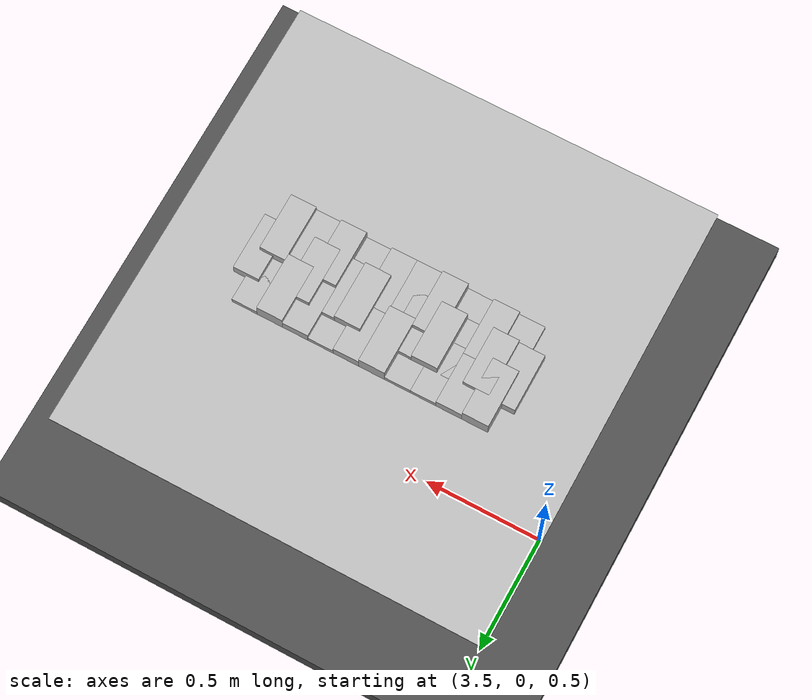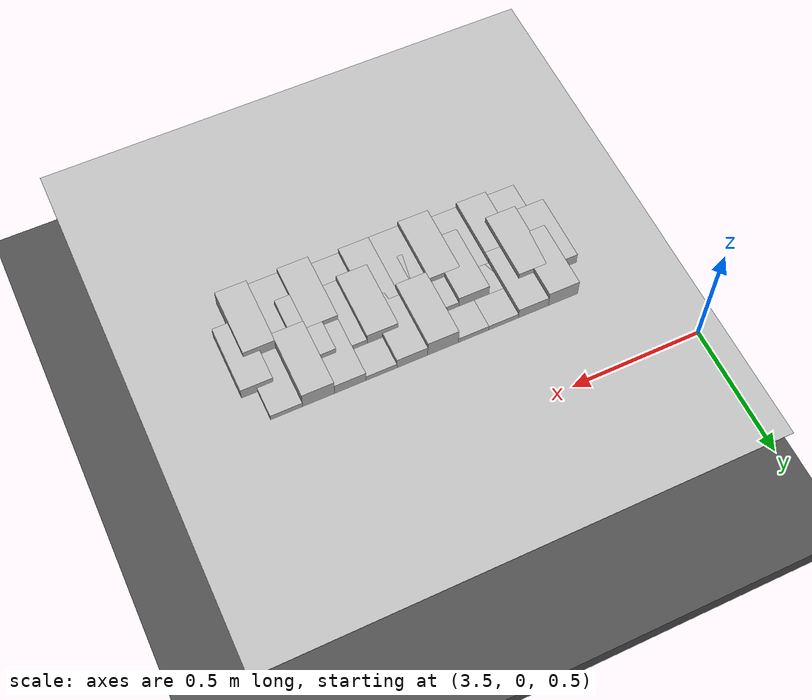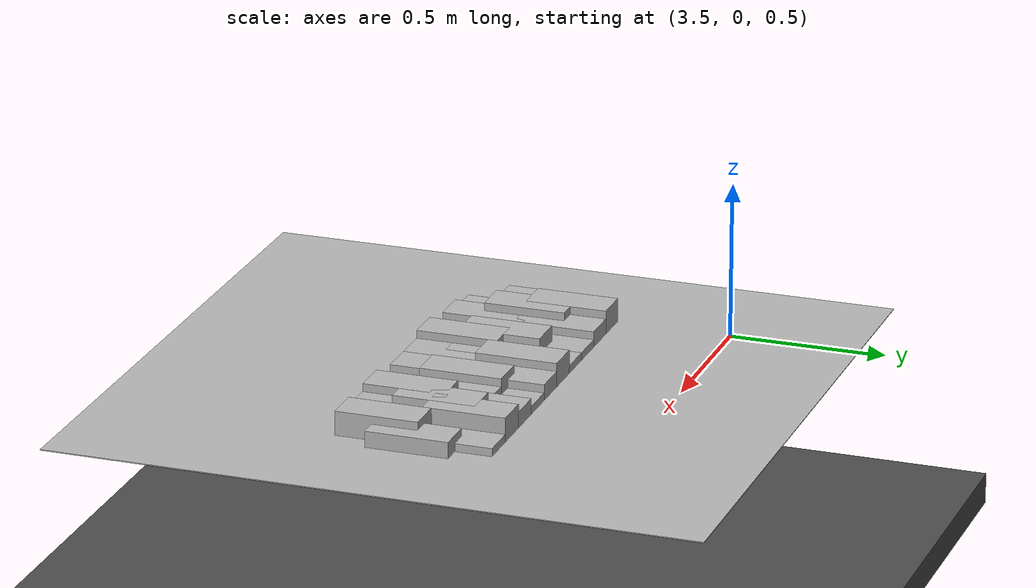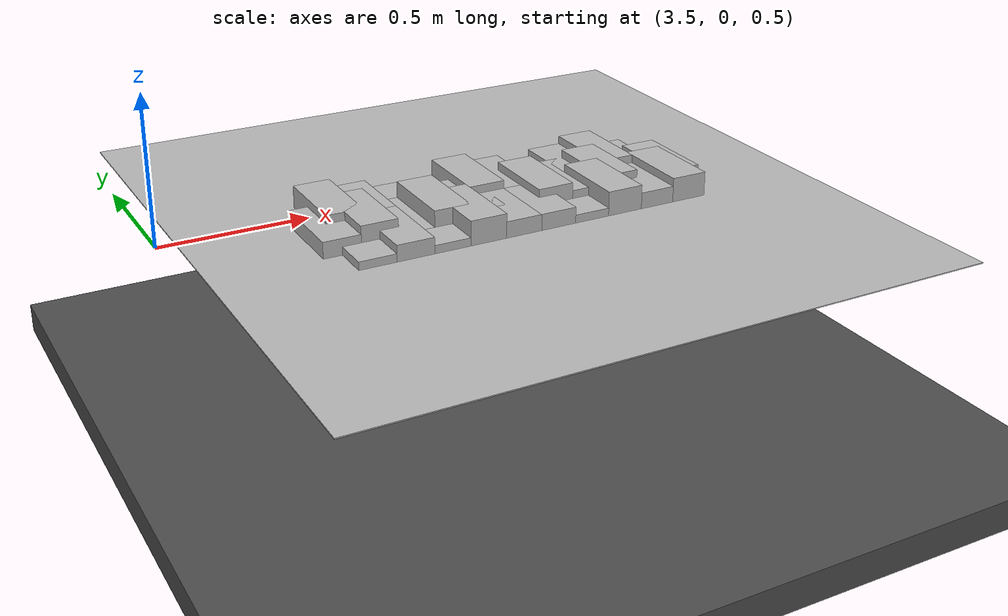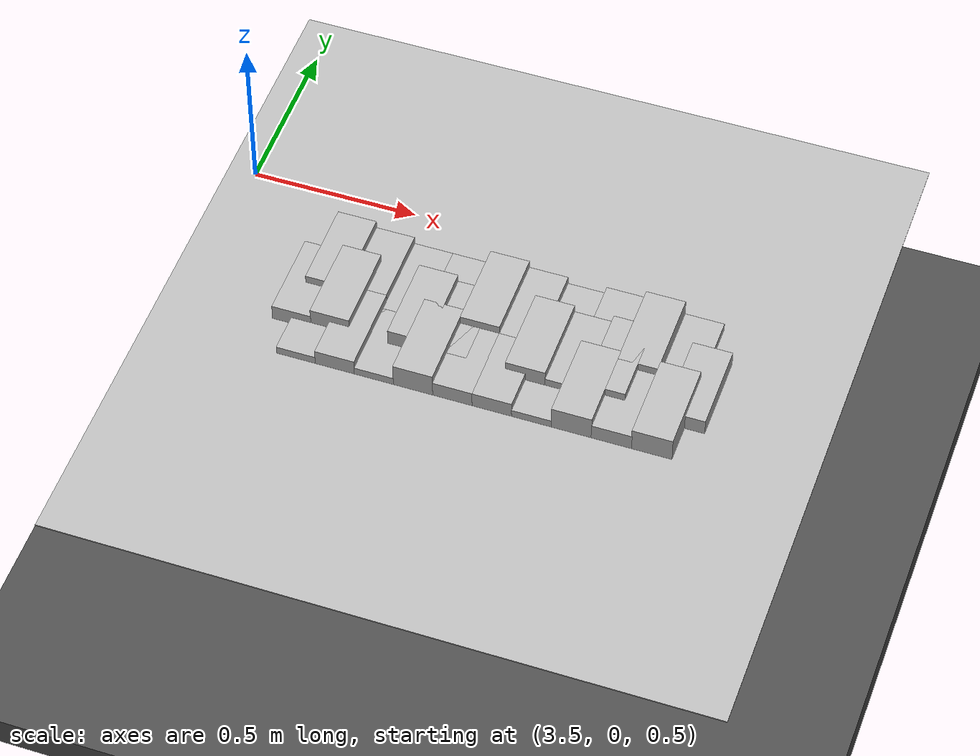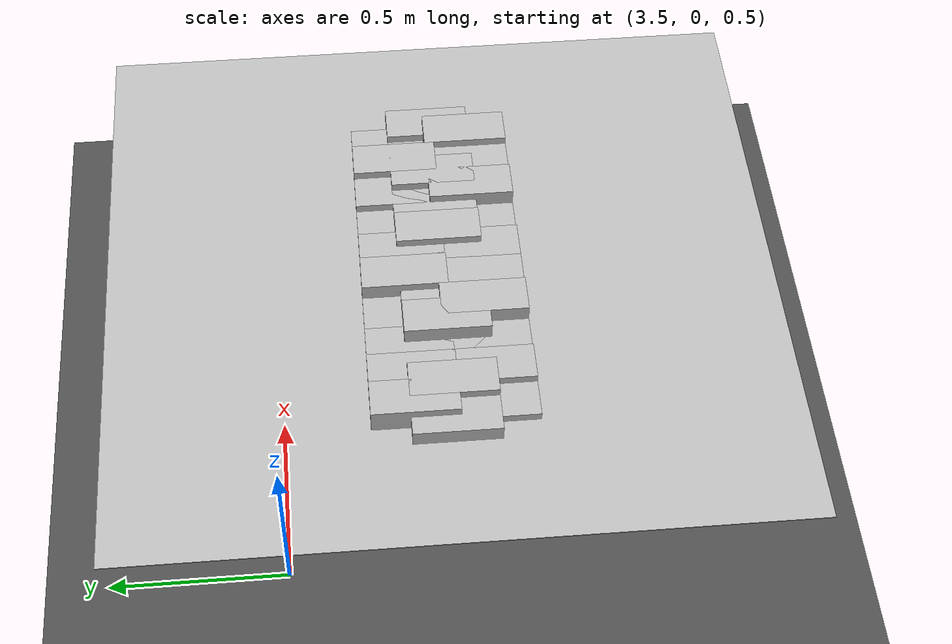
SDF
<sdf version="1.6">
 <world name="default">
  <model name="ground_plane">
   <static>1</static>
   <link name="link">
    <collision name="collision">
     <geometry><plane><normal>0 0 1</normal><size>100 100</size></plane></geometry>
     <surface><friction><ode><mu>100</mu><mu2>50</mu2></ode></friction></surface>
    </collision>
    <visual name="visual">
     <cast_shadows>0</cast_shadows>
     <geometry><plane><normal>0 0 1</normal><size>100 100</size></plane></geometry>
     <material>
      <script><uri>file://media/materials/scripts/gazebo.material</uri><name>Gazebo/Grey</name></script>
     </material>
    </visual>
   </link>
  </model>
  <model name="frc2016_roughterrain_0">
   <link name="link_clone_21">
    <pose>4.53605 -0.520112 -0.073164 0 -0 0</pose>
    <inertial>
     <inertia><ixx>nan</ixx><ixy>0</ixy><ixz>0</ixz><iyy>nan</iyy><iyz>0</iyz><izz>nan</izz></inertia>
     <mass>0</mass>
    </inertial>
    <visual name="row1_block5_md">
     <pose>0.05715 0.1143 0.10968 0 -0 0</pose>
     <geometry><box><size>0.115452 0.257474 0.0508</size></box></geometry>
     <material><shader type="pixel"/></material>
    </visual>
    <visual name="row1_block4_sm">
     <pose>0.17145 0.1143 0.09698 0 -0 0</pose>
     <geometry><box><size>0.115452 0.257474 0.0254</size></box></geometry>
     <material><shader type="pixel"/></material>
    </visual>
    <visual name="platform">
     <pose>0 0 0.08269 0 -0 0</pose>
     <geometry><box><size>1.91826 2.01688 0.003175</size></box></geometry>
     <material><shader type="pixel"/></material>
    </visual>
    <visual name="row1_block1_sm">
     <pose>0.51435 0.1143 0.09698 0 -0 0</pose>
     <geometry><box><size>0.115452 0.257474 0.0254</size></box></geometry>
     <material><shader type="pixel"/></material>
    </visual>
    <visual name="row1_block2_lg">
     <pose>0.40005 0.1143 0.12238 0 -0 0</pose>
     <geometry><box><size>0.115452 0.257474 0.0762</size></box></geometry>
     <material><shader type="pixel"/></material>
    </visual>
    <visual name="row1_block3_md">
     <pose>0.28575 0.1143 0.10968 0 -0 0</pose>
     <geometry><box><size>0.115452 0.257474 0.0508</size></box></geometry>
     <material><shader type="pixel"/></material>
    </visual>
    <visual name="row1_block6_lg">
     <pose>-0.05715 0.1143 0.12238 0 -0 0</pose>
     <geometry><box><size>0.115452 0.257474 0.0762</size></box></geometry>
     <material><shader type="pixel"/></material>
    </visual>
    <visual name="row1_block7_sm">
     <pose>-0.17145 0.1143 0.09698 0 -0 0</pose>
     <geometry><box><size>0.115452 0.257474 0.0254</size></box></geometry>
     <material><shader type="pixel"/></material>
    </visual>
    <visual name="row1_block8_sm">
     <pose>-0.28575 0.1143 0.09698 0 -0 0</pose>
     <geometry><box><size>0.115452 0.257474 0.0254</size></box></geometry>
     <material><shader type="pixel"/></material>
    </visual>
    <visual name="row1_block10_lg">
     <pose>-0.51435 0.1143 0.12238 0 -0 0</pose>
     <geometry><box><size>0.115452 0.257474 0.0762</size></box></geometry>
     <material><shader type="pixel"/></material>
    </visual>
    <visual name="row1_block9_md">
     <pose>-0.40005 0.1143 0.10968 0 -0 0</pose>
     <geometry><box><size>0.115452 0.257474 0.0508</size></box></geometry>
     <material><shader type="pixel"/></material>
    </visual>
    <visual name="row2_block1_md">
     <pose>0.5715 0 0.10968 0 -0 0</pose>
     <geometry><box><size>0.115452 0.257474 0.0508</size></box></geometry>
     <material><shader type="pixel"/></material>
    </visual>
    <visual name="row2_block2_sm">
     <pose>0.4572 0 0.09698 0 -0 0</pose>
     <geometry><box><size>0.115452 0.257474 0.0254</size></box></geometry>
     <material><shader type="pixel"/></material>
    </visual>
    <visual name="row2_block3_lg">
     <pose>0.3429 0 0.12238 0 -0 0</pose>
     <geometry><box><size>0.115452 0.257474 0.0762</size></box></geometry>
     <material><shader type="pixel"/></material>
    </visual>
    <visual name="row2_block4_md">
     <pose>0.2286 0 0.10968 0 -0 0</pose>
     <geometry><box><size>0.115452 0.257474 0.0508</size></box></geometry>
     <material><shader type="pixel"/></material>
    </visual>
    <visual name="row2_block5_lg">
     <pose>0.1143 0 0.12238 0 -0 0</pose>
     <geometry><box><size>0.115452 0.257474 0.0762</size></box></geometry>
     <material><shader type="pixel"/></material>
    </visual>
    <visual name="row2_block6_sm">
     <pose>0 0 0.09698 0 -0 0</pose>
     <geometry><box><size>0.115452 0.257474 0.0254</size></box></geometry>
     <material><shader type="pixel"/></material>
    </visual>
    <visual name="row2_block7_md">
     <pose>-0.1143 0 0.10968 0 -0 0</pose>
     <geometry><box><size>0.115452 0.257474 0.0508</size></box></geometry>
     <material><shader type="pixel"/></material>
    </visual>
    <visual name="row2_block8_lg">
     <pose>-0.2286 0 0.12238 0 -0 0</pose>
     <geometry><box><size>0.115452 0.257474 0.0762</size></box></geometry>
     <material><shader type="pixel"/></material>
    </visual>
    <visual name="row2_block9_sm">
     <pose>-0.3429 0 0.09698 0 -0 0</pose>
     <geometry><box><size>0.115452 0.257474 0.0254</size></box></geometry>
     <material><shader type="pixel"/></material>
    </visual>
    <visual name="row2_block10_lg">
     <pose>-0.4572 0 0.12238 0 -0 0</pose>
     <geometry><box><size>0.115452 0.257474 0.0762</size></box></geometry>
     <material><shader type="pixel"/></material>
    </visual>
    <visual name="row2_block11_md">
     <pose>-0.5715 0 0.10968 0 -0 0</pose>
     <geometry><box><size>0.115452 0.257474 0.0508</size></box></geometry>
     <material><shader type="pixel"/></material>
    </visual>
    <visual name="row3_block2_md">
     <pose>0.40005 -0.1143 0.10968 0 -0 0</pose>
     <geometry><box><size>0.115452 0.257474 0.0508</size></box></geometry>
     <material><shader type="pixel"/></material>
    </visual>
    <visual name="row3_block1_lg">
     <pose>0.51435 -0.1143 0.12238 0 -0 0</pose>
     <geometry><box><size>0.115452 0.257474 0.0762</size></box></geometry>
     <material><shader type="pixel"/></material>
    </visual>
    <visual name="row3_block3_lg">
     <pose>0.28575 -0.1143 0.12238 0 -0 0</pose>
     <geometry><box><size>0.115452 0.257474 0.0762</size></box></geometry>
     <material><shader type="pixel"/></material>
    </visual>
    <visual name="row3_block4_sm">
     <pose>0.17145 -0.1143 0.09698 0 -0 0</pose>
     <geometry><box><size>0.115452 0.257474 0.0254</size></box></geometry>
     <material><shader type="pixel"/></material>
    </visual>
    <visual name="row3_block5_md">
     <pose>0.05715 -0.1143 0.10968 0 -0 0</pose>
     <geometry><box><size>0.115452 0.257474 0.0508</size></box></geometry>
     <material><shader type="pixel"/></material>
    </visual>
    <visual name="row3_block6_md">
     <pose>-0.05715 -0.1143 0.10968 0 -0 0</pose>
     <geometry><box><size>0.115452 0.257474 0.0508</size></box></geometry>
     <material><shader type="pixel"/></material>
    </visual>
    <visual name="row3_block8_sm">
     <pose>-0.28575 -0.1143 0.09698 0 -0 0</pose>
     <geometry><box><size>0.115452 0.257474 0.0254</size></box></geometry>
     <material><shader type="pixel"/></material>
    </visual>
    <visual name="row3_block7_lg">
     <pose>-0.17145 -0.1143 0.12238 0 -0 0</pose>
     <geometry><box><size>0.115452 0.257474 0.0762</size></box></geometry>
     <material><shader type="pixel"/></material>
    </visual>
    <visual name="row3_block9_md">
     <pose>-0.40005 -0.1143 0.10968 0 -0 0</pose>
     <geometry><box><size>0.115452 0.257474 0.0508</size></box></geometry>
     <material><shader type="pixel"/></material>
    </visual>
    <visual name="row3_block10_sm">
     <pose>-0.51435 -0.1143 0.09698 0 -0 0</pose>
     <geometry><box><size>0.115452 0.257474 0.0254</size></box></geometry>
     <material><shader type="pixel"/></material>
    </visual>
    <collision name="platform_0">
     <pose>0 0 0.08269 0 -0 0</pose>
     <geometry><box><size>1.91826 2.01688 0.003175</size></box></geometry>
     <surface>
      <friction>
       <ode><mu>1</mu><mu2>1</mu2><fdir1>0 0 0</fdir1><slip1>0</slip1><slip2>0</slip2></ode>
       <torsional>
        <coefficient>1</coefficient>
        <patch_radius>0</patch_radius>
        <surface_radius>0</surface_radius>
        <use_patch_radius>1</use_patch_radius>
        <ode><slip>0</slip></ode>
       </torsional>
      </friction>
      <bounce><restitution_coefficient>0</restitution_coefficient><threshold>1e+06</threshold></bounce>
      <contact>
       <collide_without_contact>0</collide_without_contact>
       <collide_without_contact_bitmask>1</collide_without_contact_bitmask>
       <collide_bitmask>1</collide_bitmask>
       <ode>
        <soft_cfm>0</soft_cfm>
        <soft_erp>0.2</soft_erp>
        <kp>1e+13</kp>
        <kd>1</kd>
        <max_vel>0.01</max_vel>
        <min_depth>0</min_depth>
       </ode>
       <bullet>
        <split_impulse>1</split_impulse>
        <split_impulse_penetration_threshold>-0.01</split_impulse_penetration_threshold>
        <soft_cfm>0</soft_cfm>
        <soft_erp>0.2</soft_erp>
        <kp>1e+13</kp>
        <kd>1</kd>
       </bullet>
      </contact>
     </surface>
    </collision>
    <collision name="row2_block5_lg_0">
     <pose>0.1143 0 0.12238 0 -0 0</pose>
     <geometry><box><size>0.115452 0.257474 0.0762</size></box></geometry>
     <surface>
      <friction>
       <ode><mu>1</mu><mu2>1</mu2><fdir1>0 0 0</fdir1><slip1>0</slip1><slip2>0</slip2></ode>
       <torsional>
        <coefficient>1</coefficient>
        <patch_radius>0</patch_radius>
        <surface_radius>0</surface_radius>
        <use_patch_radius>1</use_patch_radius>
        <ode><slip>0</slip></ode>
       </torsional>
      </friction>
      <bounce><restitution_coefficient>0</restitution_coefficient><threshold>1e+06</threshold></bounce>
      <contact>
       <collide_without_contact>0</collide_without_contact>
       <collide_without_contact_bitmask>1</collide_without_contact_bitmask>
       <collide_bitmask>1</collide_bitmask>
       <ode>
        <soft_cfm>0</soft_cfm>
        <soft_erp>0.2</soft_erp>
        <kp>1e+13</kp>
        <kd>1</kd>
        <max_vel>0.01</max_vel>
        <min_depth>0</min_depth>
       </ode>
       <bullet>
        <split_impulse>1</split_impulse>
        <split_impulse_penetration_threshold>-0.01</split_impulse_penetration_threshold>
        <soft_cfm>0</soft_cfm>
        <soft_erp>0.2</soft_erp>
        <kp>1e+13</kp>
        <kd>1</kd>
       </bullet>
      </contact>
     </surface>
    </collision>
    <collision name="row1_block1_sm_0">
     <pose>0.51435 0.1143 0.09698 0 -0 0</pose>
     <geometry><box><size>0.115452 0.257474 0.0254</size></box></geometry>
     <surface>
      <friction>
       <ode><mu>1</mu><mu2>1</mu2><fdir1>0 0 0</fdir1><slip1>0</slip1><slip2>0</slip2></ode>
       <torsional>
        <coefficient>1</coefficient>
        <patch_radius>0</patch_radius>
        <surface_radius>0</surface_radius>
        <use_patch_radius>1</use_patch_radius>
        <ode><slip>0</slip></ode>
       </torsional>
      </friction>
      <bounce><restitution_coefficient>0</restitution_coefficient><threshold>1e+06</threshold></bounce>
      <contact>
       <collide_without_contact>0</collide_without_contact>
       <collide_without_contact_bitmask>1</collide_without_contact_bitmask>
       <collide_bitmask>1</collide_bitmask>
       <ode>
        <soft_cfm>0</soft_cfm>
        <soft_erp>0.2</soft_erp>
        <kp>1e+13</kp>
        <kd>1</kd>
        <max_vel>0.01</max_vel>
        <min_depth>0</min_depth>
       </ode>
       <bullet>
        <split_impulse>1</split_impulse>
        <split_impulse_penetration_threshold>-0.01</split_impulse_penetration_threshold>
        <soft_cfm>0</soft_cfm>
        <soft_erp>0.2</soft_erp>
        <kp>1e+13</kp>
        <kd>1</kd>
       </bullet>
      </contact>
     </surface>
    </collision>
    <collision name="row1_block3_md_0">
     <pose>0.28575 0.1143 0.10968 0 -0 0</pose>
     <geometry><box><size>0.115452 0.257474 0.0508</size></box></geometry>
     <surface>
      <friction>
       <ode><mu>1</mu><mu2>1</mu2><fdir1>0 0 0</fdir1><slip1>0</slip1><slip2>0</slip2></ode>
       <torsional>
        <coefficient>1</coefficient>
        <patch_radius>0</patch_radius>
        <surface_radius>0</surface_radius>
        <use_patch_radius>1</use_patch_radius>
        <ode><slip>0</slip></ode>
       </torsional>
      </friction>
      <bounce><restitution_coefficient>0</restitution_coefficient><threshold>1e+06</threshold></bounce>
      <contact>
       <collide_without_contact>0</collide_without_contact>
       <collide_without_contact_bitmask>1</collide_without_contact_bitmask>
       <collide_bitmask>1</collide_bitmask>
       <ode>
        <soft_cfm>0</soft_cfm>
        <soft_erp>0.2</soft_erp>
        <kp>1e+13</kp>
        <kd>1</kd>
        <max_vel>0.01</max_vel>
        <min_depth>0</min_depth>
       </ode>
       <bullet>
        <split_impulse>1</split_impulse>
        <split_impulse_penetration_threshold>-0.01</split_impulse_penetration_threshold>
        <soft_cfm>0</soft_cfm>
        <soft_erp>0.2</soft_erp>
        <kp>1e+13</kp>
        <kd>1</kd>
       </bullet>
      </contact>
     </surface>
    </collision>
    <collision name="row1_block2_lg_0">
     <pose>0.40005 0.1143 0.12238 0 -0 0</pose>
     <geometry><box><size>0.115452 0.257474 0.0762</size></box></geometry>
     <surface>
      <friction>
       <ode><mu>1</mu><mu2>1</mu2><fdir1>0 0 0</fdir1><slip1>0</slip1><slip2>0</slip2></ode>
       <torsional>
        <coefficient>1</coefficient>
        <patch_radius>0</patch_radius>
        <surface_radius>0</surface_radius>
        <use_patch_radius>1</use_patch_radius>
        <ode><slip>0</slip></ode>
       </torsional>
      </friction>
      <bounce><restitution_coefficient>0</restitution_coefficient><threshold>1e+06</threshold></bounce>
      <contact>
       <collide_without_contact>0</collide_without_contact>
       <collide_without_contact_bitmask>1</collide_without_contact_bitmask>
       <collide_bitmask>1</collide_bitmask>
       <ode>
        <soft_cfm>0</soft_cfm>
        <soft_erp>0.2</soft_erp>
        <kp>1e+13</kp>
        <kd>1</kd>
        <max_vel>0.01</max_vel>
        <min_depth>0</min_depth>
       </ode>
       <bullet>
        <split_impulse>1</split_impulse>
        <split_impulse_penetration_threshold>-0.01</split_impulse_penetration_threshold>
        <soft_cfm>0</soft_cfm>
        <soft_erp>0.2</soft_erp>
        <kp>1e+13</kp>
        <kd>1</kd>
       </bullet>
      </contact>
     </surface>
    </collision>
    <collision name="row1_block4_sm_0">
     <pose>0.17145 0.1143 0.09698 0 -0 0</pose>
     <geometry><box><size>0.115452 0.257474 0.0254</size></box></geometry>
     <surface>
      <friction>
       <ode><mu>1</mu><mu2>1</mu2><fdir1>0 0 0</fdir1><slip1>0</slip1><slip2>0</slip2></ode>
       <torsional>
        <coefficient>1</coefficient>
        <patch_radius>0</patch_radius>
        <surface_radius>0</surface_radius>
        <use_patch_radius>1</use_patch_radius>
        <ode><slip>0</slip></ode>
       </torsional>
      </friction>
      <bounce><restitution_coefficient>0</restitution_coefficient><threshold>1e+06</threshold></bounce>
      <contact>
       <collide_without_contact>0</collide_without_contact>
       <collide_without_contact_bitmask>1</collide_without_contact_bitmask>
       <collide_bitmask>1</collide_bitmask>
       <ode>
        <soft_cfm>0</soft_cfm>
        <soft_erp>0.2</soft_erp>
        <kp>1e+13</kp>
        <kd>1</kd>
        <max_vel>0.01</max_vel>
        <min_depth>0</min_depth>
       </ode>
       <bullet>
        <split_impulse>1</split_impulse>
        <split_impulse_penetration_threshold>-0.01</split_impulse_penetration_threshold>
        <soft_cfm>0</soft_cfm>
        <soft_erp>0.2</soft_erp>
        <kp>1e+13</kp>
        <kd>1</kd>
       </bullet>
      </contact>
     </surface>
    </collision>
    <collision name="row1_block5_md_0">
     <pose>0.05715 0.1143 0.10968 0 -0 0</pose>
     <geometry><box><size>0.115452 0.257474 0.0508</size></box></geometry>
     <surface>
      <friction>
       <ode><mu>1</mu><mu2>1</mu2><fdir1>0 0 0</fdir1><slip1>0</slip1><slip2>0</slip2></ode>
       <torsional>
        <coefficient>1</coefficient>
        <patch_radius>0</patch_radius>
        <surface_radius>0</surface_radius>
        <use_patch_radius>1</use_patch_radius>
        <ode><slip>0</slip></ode>
       </torsional>
      </friction>
      <bounce><restitution_coefficient>0</restitution_coefficient><threshold>1e+06</threshold></bounce>
      <contact>
       <collide_without_contact>0</collide_without_contact>
       <collide_without_contact_bitmask>1</collide_without_contact_bitmask>
       <collide_bitmask>1</collide_bitmask>
       <ode>
        <soft_cfm>0</soft_cfm>
        <soft_erp>0.2</soft_erp>
        <kp>1e+13</kp>
        <kd>1</kd>
        <max_vel>0.01</max_vel>
        <min_depth>0</min_depth>
       </ode>
       <bullet>
        <split_impulse>1</split_impulse>
        <split_impulse_penetration_threshold>-0.01</split_impulse_penetration_threshold>
        <soft_cfm>0</soft_cfm>
        <soft_erp>0.2</soft_erp>
        <kp>1e+13</kp>
        <kd>1</kd>
       </bullet>
      </contact>
     </surface>
    </collision>
    <collision name="row1_block6_lg_0">
     <pose>-0.05715 0.1143 0.12238 0 -0 0</pose>
     <geometry><box><size>0.115452 0.257474 0.0762</size></box></geometry>
     <surface>
      <friction>
       <ode><mu>1</mu><mu2>1</mu2><fdir1>0 0 0</fdir1><slip1>0</slip1><slip2>0</slip2></ode>
       <torsional>
        <coefficient>1</coefficient>
        <patch_radius>0</patch_radius>
        <surface_radius>0</surface_radius>
        <use_patch_radius>1</use_patch_radius>
        <ode><slip>0</slip></ode>
       </torsional>
      </friction>
      <bounce><restitution_coefficient>0</restitution_coefficient><threshold>1e+06</threshold></bounce>
      <contact>
       <collide_without_contact>0</collide_without_contact>
       <collide_without_contact_bitmask>1</collide_without_contact_bitmask>
       <collide_bitmask>1</collide_bitmask>
       <ode>
        <soft_cfm>0</soft_cfm>
        <soft_erp>0.2</soft_erp>
        <kp>1e+13</kp>
        <kd>1</kd>
        <max_vel>0.01</max_vel>
        <min_depth>0</min_depth>
       </ode>
       <bullet>
        <split_impulse>1</split_impulse>
        <split_impulse_penetration_threshold>-0.01</split_impulse_penetration_threshold>
        <soft_cfm>0</soft_cfm>
        <soft_erp>0.2</soft_erp>
        <kp>1e+13</kp>
        <kd>1</kd>
       </bullet>
      </contact>
     </surface>
    </collision>
    <collision name="row1_block7_sm_0">
     <pose>-0.17145 0.1143 0.09698 0 -0 0</pose>
     <geometry><box><size>0.115452 0.257474 0.0254</size></box></geometry>
     <surface>
      <friction>
       <ode><mu>1</mu><mu2>1</mu2><fdir1>0 0 0</fdir1><slip1>0</slip1><slip2>0</slip2></ode>
       <torsional>
        <coefficient>1</coefficient>
        <patch_radius>0</patch_radius>
        <surface_radius>0</surface_radius>
        <use_patch_radius>1</use_patch_radius>
        <ode><slip>0</slip></ode>
       </torsional>
      </friction>
      <bounce><restitution_coefficient>0</restitution_coefficient><threshold>1e+06</threshold></bounce>
      <contact>
       <collide_without_contact>0</collide_without_contact>
       <collide_without_contact_bitmask>1</collide_without_contact_bitmask>
       <collide_bitmask>1</collide_bitmask>
       <ode>
        <soft_cfm>0</soft_cfm>
        <soft_erp>0.2</soft_erp>
        <kp>1e+13</kp>
        <kd>1</kd>
        <max_vel>0.01</max_vel>
        <min_depth>0</min_depth>
       </ode>
       <bullet>
        <split_impulse>1</split_impulse>
        <split_impulse_penetration_threshold>-0.01</split_impulse_penetration_threshold>
        <soft_cfm>0</soft_cfm>
        <soft_erp>0.2</soft_erp>
        <kp>1e+13</kp>
        <kd>1</kd>
       </bullet>
      </contact>
     </surface>
    </collision>
    <collision name="row1_block10_lg_0">
     <pose>-0.51435 0.1143 0.12238 0 -0 0</pose>
     <geometry><box><size>0.115452 0.257474 0.0762</size></box></geometry>
     <surface>
      <friction>
       <ode><mu>1</mu><mu2>1</mu2><fdir1>0 0 0</fdir1><slip1>0</slip1><slip2>0</slip2></ode>
       <torsional>
        <coefficient>1</coefficient>
        <patch_radius>0</patch_radius>
        <surface_radius>0</surface_radius>
        <use_patch_radius>1</use_patch_radius>
        <ode><slip>0</slip></ode>
       </torsional>
      </friction>
      <bounce><restitution_coefficient>0</restitution_coefficient><threshold>1e+06</threshold></bounce>
      <contact>
       <collide_without_contact>0</collide_without_contact>
       <collide_without_contact_bitmask>1</collide_without_contact_bitmask>
       <collide_bitmask>1</collide_bitmask>
       <ode>
        <soft_cfm>0</soft_cfm>
        <soft_erp>0.2</soft_erp>
        <kp>1e+13</kp>
        <kd>1</kd>
        <max_vel>0.01</max_vel>
        <min_depth>0</min_depth>
       </ode>
       <bullet>
        <split_impulse>1</split_impulse>
        <split_impulse_penetration_threshold>-0.01</split_impulse_penetration_threshold>
        <soft_cfm>0</soft_cfm>
        <soft_erp>0.2</soft_erp>
        <kp>1e+13</kp>
        <kd>1</kd>
       </bullet>
      </contact>
     </surface>
    </collision>
    <collision name="row1_block8_sm_0">
     <pose>-0.28575 0.1143 0.09698 0 -0 0</pose>
     <geometry><box><size>0.115452 0.257474 0.0254</size></box></geometry>
     <surface>
      <friction>
       <ode><mu>1</mu><mu2>1</mu2><fdir1>0 0 0</fdir1><slip1>0</slip1><slip2>0</slip2></ode>
       <torsional>
        <coefficient>1</coefficient>
        <patch_radius>0</patch_radius>
        <surface_radius>0</surface_radius>
        <use_patch_radius>1</use_patch_radius>
        <ode><slip>0</slip></ode>
       </torsional>
      </friction>
      <bounce><restitution_coefficient>0</restitution_coefficient><threshold>1e+06</threshold></bounce>
      <contact>
       <collide_without_contact>0</collide_without_contact>
       <collide_without_contact_bitmask>1</collide_without_contact_bitmask>
       <collide_bitmask>1</collide_bitmask>
       <ode>
        <soft_cfm>0</soft_cfm>
        <soft_erp>0.2</soft_erp>
        <kp>1e+13</kp>
        <kd>1</kd>
        <max_vel>0.01</max_vel>
        <min_depth>0</min_depth>
       </ode>
       <bullet>
        <split_impulse>1</split_impulse>
        <split_impulse_penetration_threshold>-0.01</split_impulse_penetration_threshold>
        <soft_cfm>0</soft_cfm>
        <soft_erp>0.2</soft_erp>
        <kp>1e+13</kp>
        <kd>1</kd>
       </bullet>
      </contact>
     </surface>
    </collision>
    <collision name="row1_block9_md_0">
     <pose>-0.40005 0.1143 0.10968 0 -0 0</pose>
     <geometry><box><size>0.115452 0.257474 0.0508</size></box></geometry>
     <surface>
      <friction>
       <ode><mu>1</mu><mu2>1</mu2><fdir1>0 0 0</fdir1><slip1>0</slip1><slip2>0</slip2></ode>
       <torsional>
        <coefficient>1</coefficient>
        <patch_radius>0</patch_radius>
        <surface_radius>0</surface_radius>
        <use_patch_radius>1</use_patch_radius>
        <ode><slip>0</slip></ode>
       </torsional>
      </friction>
      <bounce><restitution_coefficient>0</restitution_coefficient><threshold>1e+06</threshold></bounce>
      <contact>
       <collide_without_contact>0</collide_without_contact>
       <collide_without_contact_bitmask>1</collide_without_contact_bitmask>
       <collide_bitmask>1</collide_bitmask>
       <ode>
        <soft_cfm>0</soft_cfm>
        <soft_erp>0.2</soft_erp>
        <kp>1e+13</kp>
        <kd>1</kd>
        <max_vel>0.01</max_vel>
        <min_depth>0</min_depth>
       </ode>
       <bullet>
        <split_impulse>1</split_impulse>
        <split_impulse_penetration_threshold>-0.01</split_impulse_penetration_threshold>
        <soft_cfm>0</soft_cfm>
        <soft_erp>0.2</soft_erp>
        <kp>1e+13</kp>
        <kd>1</kd>
       </bullet>
      </contact>
     </surface>
    </collision>
    <collision name="row2_block1_md_0">
     <pose>0.5715 0 0.10968 0 -0 0</pose>
     <geometry><box><size>0.115452 0.257474 0.0508</size></box></geometry>
     <surface>
      <friction>
       <ode><mu>1</mu><mu2>1</mu2><fdir1>0 0 0</fdir1><slip1>0</slip1><slip2>0</slip2></ode>
       <torsional>
        <coefficient>1</coefficient>
        <patch_radius>0</patch_radius>
        <surface_radius>0</surface_radius>
        <use_patch_radius>1</use_patch_radius>
        <ode><slip>0</slip></ode>
       </torsional>
      </friction>
      <bounce><restitution_coefficient>0</restitution_coefficient><threshold>1e+06</threshold></bounce>
      <contact>
       <collide_without_contact>0</collide_without_contact>
       <collide_without_contact_bitmask>1</collide_without_contact_bitmask>
       <collide_bitmask>1</collide_bitmask>
       <ode>
        <soft_cfm>0</soft_cfm>
        <soft_erp>0.2</soft_erp>
        <kp>1e+13</kp>
        <kd>1</kd>
        <max_vel>0.01</max_vel>
        <min_depth>0</min_depth>
       </ode>
       <bullet>
        <split_impulse>1</split_impulse>
        <split_impulse_penetration_threshold>-0.01</split_impulse_penetration_threshold>
        <soft_cfm>0</soft_cfm>
        <soft_erp>0.2</soft_erp>
        <kp>1e+13</kp>
        <kd>1</kd>
       </bullet>
      </contact>
     </surface>
    </collision>
    <collision name="row2_block2_sm_0">
     <pose>0.4572 0 0.09698 0 -0 0</pose>
     <geometry><box><size>0.115452 0.257474 0.0254</size></box></geometry>
     <surface>
      <friction>
       <ode><mu>1</mu><mu2>1</mu2><fdir1>0 0 0</fdir1><slip1>0</slip1><slip2>0</slip2></ode>
       <torsional>
        <coefficient>1</coefficient>
        <patch_radius>0</patch_radius>
        <surface_radius>0</surface_radius>
        <use_patch_radius>1</use_patch_radius>
        <ode><slip>0</slip></ode>
       </torsional>
      </friction>
      <bounce><restitution_coefficient>0</restitution_coefficient><threshold>1e+06</threshold></bounce>
      <contact>
       <collide_without_contact>0</collide_without_contact>
       <collide_without_contact_bitmask>1</collide_without_contact_bitmask>
       <collide_bitmask>1</collide_bitmask>
       <ode>
        <soft_cfm>0</soft_cfm>
        <soft_erp>0.2</soft_erp>
        <kp>1e+13</kp>
        <kd>1</kd>
        <max_vel>0.01</max_vel>
        <min_depth>0</min_depth>
       </ode>
       <bullet>
        <split_impulse>1</split_impulse>
        <split_impulse_penetration_threshold>-0.01</split_impulse_penetration_threshold>
        <soft_cfm>0</soft_cfm>
        <soft_erp>0.2</soft_erp>
        <kp>1e+13</kp>
        <kd>1</kd>
       </bullet>
      </contact>
     </surface>
    </collision>
    <collision name="row2_block4_md_0">
     <pose>0.2286 0 0.10968 0 -0 0</pose>
     <geometry><box><size>0.115452 0.257474 0.0508</size></box></geometry>
     <surface>
      <friction>
       <ode><mu>1</mu><mu2>1</mu2><fdir1>0 0 0</fdir1><slip1>0</slip1><slip2>0</slip2></ode>
       <torsional>
        <coefficient>1</coefficient>
        <patch_radius>0</patch_radius>
        <surface_radius>0</surface_radius>
        <use_patch_radius>1</use_patch_radius>
        <ode><slip>0</slip></ode>
       </torsional>
      </friction>
      <bounce><restitution_coefficient>0</restitution_coefficient><threshold>1e+06</threshold></bounce>
      <contact>
       <collide_without_contact>0</collide_without_contact>
       <collide_without_contact_bitmask>1</collide_without_contact_bitmask>
       <collide_bitmask>1</collide_bitmask>
       <ode>
        <soft_cfm>0</soft_cfm>
        <soft_erp>0.2</soft_erp>
        <kp>1e+13</kp>
        <kd>1</kd>
        <max_vel>0.01</max_vel>
        <min_depth>0</min_depth>
       </ode>
       <bullet>
        <split_impulse>1</split_impulse>
        <split_impulse_penetration_threshold>-0.01</split_impulse_penetration_threshold>
        <soft_cfm>0</soft_cfm>
        <soft_erp>0.2</soft_erp>
        <kp>1e+13</kp>
        <kd>1</kd>
       </bullet>
      </contact>
     </surface>
    </collision>
    <collision name="row2_block3_lg_0">
     <pose>0.3429 0 0.12238 0 -0 0</pose>
     <geometry><box><size>0.115452 0.257474 0.0762</size></box></geometry>
     <surface>
      <friction>
       <ode><mu>1</mu><mu2>1</mu2><fdir1>0 0 0</fdir1><slip1>0</slip1><slip2>0</slip2></ode>
       <torsional>
        <coefficient>1</coefficient>
        <patch_radius>0</patch_radius>
        <surface_radius>0</surface_radius>
        <use_patch_radius>1</use_patch_radius>
        <ode><slip>0</slip></ode>
       </torsional>
      </friction>
      <bounce><restitution_coefficient>0</restitution_coefficient><threshold>1e+06</threshold></bounce>
      <contact>
       <collide_without_contact>0</collide_without_contact>
       <collide_without_contact_bitmask>1</collide_without_contact_bitmask>
       <collide_bitmask>1</collide_bitmask>
       <ode>
        <soft_cfm>0</soft_cfm>
        <soft_erp>0.2</soft_erp>
        <kp>1e+13</kp>
        <kd>1</kd>
        <max_vel>0.01</max_vel>
        <min_depth>0</min_depth>
       </ode>
       <bullet>
        <split_impulse>1</split_impulse>
        <split_impulse_penetration_threshold>-0.01</split_impulse_penetration_threshold>
        <soft_cfm>0</soft_cfm>
        <soft_erp>0.2</soft_erp>
        <kp>1e+13</kp>
        <kd>1</kd>
       </bullet>
      </contact>
     </surface>
    </collision>
    <collision name="row2_block7_md_0">
     <pose>-0.1143 0 0.10968 0 -0 0</pose>
     <geometry><box><size>0.115452 0.257474 0.0508</size></box></geometry>
     <surface>
      <friction>
       <ode><mu>1</mu><mu2>1</mu2><fdir1>0 0 0</fdir1><slip1>0</slip1><slip2>0</slip2></ode>
       <torsional>
        <coefficient>1</coefficient>
        <patch_radius>0</patch_radius>
        <surface_radius>0</surface_radius>
        <use_patch_radius>1</use_patch_radius>
        <ode><slip>0</slip></ode>
       </torsional>
      </friction>
      <bounce><restitution_coefficient>0</restitution_coefficient><threshold>1e+06</threshold></bounce>
      <contact>
       <collide_without_contact>0</collide_without_contact>
       <collide_without_contact_bitmask>1</collide_without_contact_bitmask>
       <collide_bitmask>1</collide_bitmask>
       <ode>
        <soft_cfm>0</soft_cfm>
        <soft_erp>0.2</soft_erp>
        <kp>1e+13</kp>
        <kd>1</kd>
        <max_vel>0.01</max_vel>
        <min_depth>0</min_depth>
       </ode>
       <bullet>
        <split_impulse>1</split_impulse>
        <split_impulse_penetration_threshold>-0.01</split_impulse_penetration_threshold>
        <soft_cfm>0</soft_cfm>
        <soft_erp>0.2</soft_erp>
        <kp>1e+13</kp>
        <kd>1</kd>
       </bullet>
      </contact>
     </surface>
    </collision>
    <collision name="row2_block6_sm_0">
     <pose>0 0 0.09698 0 -0 0</pose>
     <geometry><box><size>0.115452 0.257474 0.0254</size></box></geometry>
     <surface>
      <friction>
       <ode><mu>1</mu><mu2>1</mu2><fdir1>0 0 0</fdir1><slip1>0</slip1><slip2>0</slip2></ode>
       <torsional>
        <coefficient>1</coefficient>
        <patch_radius>0</patch_radius>
        <surface_radius>0</surface_radius>
        <use_patch_radius>1</use_patch_radius>
        <ode><slip>0</slip></ode>
       </torsional>
      </friction>
      <bounce><restitution_coefficient>0</restitution_coefficient><threshold>1e+06</threshold></bounce>
      <contact>
       <collide_without_contact>0</collide_without_contact>
       <collide_without_contact_bitmask>1</collide_without_contact_bitmask>
       <collide_bitmask>1</collide_bitmask>
       <ode>
        <soft_cfm>0</soft_cfm>
        <soft_erp>0.2</soft_erp>
        <kp>1e+13</kp>
        <kd>1</kd>
        <max_vel>0.01</max_vel>
        <min_depth>0</min_depth>
       </ode>
       <bullet>
        <split_impulse>1</split_impulse>
        <split_impulse_penetration_threshold>-0.01</split_impulse_penetration_threshold>
        <soft_cfm>0</soft_cfm>
        <soft_erp>0.2</soft_erp>
        <kp>1e+13</kp>
        <kd>1</kd>
       </bullet>
      </contact>
     </surface>
    </collision>
    <collision name="row2_block10_lg_0">
     <pose>-0.4572 0 0.12238 0 -0 0</pose>
     <geometry><box><size>0.115452 0.257474 0.0762</size></box></geometry>
     <surface>
      <friction>
       <ode><mu>1</mu><mu2>1</mu2><fdir1>0 0 0</fdir1><slip1>0</slip1><slip2>0</slip2></ode>
       <torsional>
        <coefficient>1</coefficient>
        <patch_radius>0</patch_radius>
        <surface_radius>0</surface_radius>
        <use_patch_radius>1</use_patch_radius>
        <ode><slip>0</slip></ode>
       </torsional>
      </friction>
      <bounce><restitution_coefficient>0</restitution_coefficient><threshold>1e+06</threshold></bounce>
      <contact>
       <collide_without_contact>0</collide_without_contact>
       <collide_without_contact_bitmask>1</collide_without_contact_bitmask>
       <collide_bitmask>1</collide_bitmask>
       <ode>
        <soft_cfm>0</soft_cfm>
        <soft_erp>0.2</soft_erp>
        <kp>1e+13</kp>
        <kd>1</kd>
        <max_vel>0.01</max_vel>
        <min_depth>0</min_depth>
       </ode>
       <bullet>
        <split_impulse>1</split_impulse>
        <split_impulse_penetration_threshold>-0.01</split_impulse_penetration_threshold>
        <soft_cfm>0</soft_cfm>
        <soft_erp>0.2</soft_erp>
        <kp>1e+13</kp>
        <kd>1</kd>
       </bullet>
      </contact>
     </surface>
    </collision>
    <collision name="row2_block8_lg_0">
     <pose>-0.2286 0 0.12238 0 -0 0</pose>
     <geometry><box><size>0.115452 0.257474 0.0762</size></box></geometry>
     <surface>
      <friction>
       <ode><mu>1</mu><mu2>1</mu2><fdir1>0 0 0</fdir1><slip1>0</slip1><slip2>0</slip2></ode>
       <torsional>
        <coefficient>1</coefficient>
        <patch_radius>0</patch_radius>
        <surface_radius>0</surface_radius>
        <use_patch_radius>1</use_patch_radius>
        <ode><slip>0</slip></ode>
       </torsional>
      </friction>
      <bounce><restitution_coefficient>0</restitution_coefficient><threshold>1e+06</threshold></bounce>
      <contact>
       <collide_without_contact>0</collide_without_contact>
       <collide_without_contact_bitmask>1</collide_without_contact_bitmask>
       <collide_bitmask>1</collide_bitmask>
       <ode>
        <soft_cfm>0</soft_cfm>
        <soft_erp>0.2</soft_erp>
        <kp>1e+13</kp>
        <kd>1</kd>
        <max_vel>0.01</max_vel>
        <min_depth>0</min_depth>
       </ode>
       <bullet>
        <split_impulse>1</split_impulse>
        <split_impulse_penetration_threshold>-0.01</split_impulse_penetration_threshold>
        <soft_cfm>0</soft_cfm>
        <soft_erp>0.2</soft_erp>
        <kp>1e+13</kp>
        <kd>1</kd>
       </bullet>
      </contact>
     </surface>
    </collision>
    <collision name="row2_block11_md_0">
     <pose>-0.5715 0 0.10968 0 -0 0</pose>
     <geometry><box><size>0.115452 0.257474 0.0508</size></box></geometry>
     <surface>
      <friction>
       <ode><mu>1</mu><mu2>1</mu2><fdir1>0 0 0</fdir1><slip1>0</slip1><slip2>0</slip2></ode>
       <torsional>
        <coefficient>1</coefficient>
        <patch_radius>0</patch_radius>
        <surface_radius>0</surface_radius>
        <use_patch_radius>1</use_patch_radius>
        <ode><slip>0</slip></ode>
       </torsional>
      </friction>
      <bounce><restitution_coefficient>0</restitution_coefficient><threshold>1e+06</threshold></bounce>
      <contact>
       <collide_without_contact>0</collide_without_contact>
       <collide_without_contact_bitmask>1</collide_without_contact_bitmask>
       <collide_bitmask>1</collide_bitmask>
       <ode>
        <soft_cfm>0</soft_cfm>
        <soft_erp>0.2</soft_erp>
        <kp>1e+13</kp>
        <kd>1</kd>
        <max_vel>0.01</max_vel>
        <min_depth>0</min_depth>
       </ode>
       <bullet>
        <split_impulse>1</split_impulse>
        <split_impulse_penetration_threshold>-0.01</split_impulse_penetration_threshold>
        <soft_cfm>0</soft_cfm>
        <soft_erp>0.2</soft_erp>
        <kp>1e+13</kp>
        <kd>1</kd>
       </bullet>
      </contact>
     </surface>
    </collision>
    <collision name="row2_block9_sm_0">
     <pose>-0.3429 0 0.09698 0 -0 0</pose>
     <geometry><box><size>0.115452 0.257474 0.0254</size></box></geometry>
     <surface>
      <friction>
       <ode><mu>1</mu><mu2>1</mu2><fdir1>0 0 0</fdir1><slip1>0</slip1><slip2>0</slip2></ode>
       <torsional>
        <coefficient>1</coefficient>
        <patch_radius>0</patch_radius>
        <surface_radius>0</surface_radius>
        <use_patch_radius>1</use_patch_radius>
        <ode><slip>0</slip></ode>
       </torsional>
      </friction>
      <bounce><restitution_coefficient>0</restitution_coefficient><threshold>1e+06</threshold></bounce>
      <contact>
       <collide_without_contact>0</collide_without_contact>
       <collide_without_contact_bitmask>1</collide_without_contact_bitmask>
       <collide_bitmask>1</collide_bitmask>
       <ode>
        <soft_cfm>0</soft_cfm>
        <soft_erp>0.2</soft_erp>
        <kp>1e+13</kp>
        <kd>1</kd>
        <max_vel>0.01</max_vel>
        <min_depth>0</min_depth>
       </ode>
       <bullet>
        <split_impulse>1</split_impulse>
        <split_impulse_penetration_threshold>-0.01</split_impulse_penetration_threshold>
        <soft_cfm>0</soft_cfm>
        <soft_erp>0.2</soft_erp>
        <kp>1e+13</kp>
        <kd>1</kd>
       </bullet>
      </contact>
     </surface>
    </collision>
    <collision name="row3_block3_lg_0">
     <pose>0.28575 -0.1143 0.12238 0 -0 0</pose>
     <geometry><box><size>0.115452 0.257474 0.0762</size></box></geometry>
     <surface>
      <friction>
       <ode><mu>1</mu><mu2>1</mu2><fdir1>0 0 0</fdir1><slip1>0</slip1><slip2>0</slip2></ode>
       <torsional>
        <coefficient>1</coefficient>
        <patch_radius>0</patch_radius>
        <surface_radius>0</surface_radius>
        <use_patch_radius>1</use_patch_radius>
        <ode><slip>0</slip></ode>
       </torsional>
      </friction>
      <bounce><restitution_coefficient>0</restitution_coefficient><threshold>1e+06</threshold></bounce>
      <contact>
       <collide_without_contact>0</collide_without_contact>
       <collide_without_contact_bitmask>1</collide_without_contact_bitmask>
       <collide_bitmask>1</collide_bitmask>
       <ode>
        <soft_cfm>0</soft_cfm>
        <soft_erp>0.2</soft_erp>
        <kp>1e+13</kp>
        <kd>1</kd>
        <max_vel>0.01</max_vel>
        <min_depth>0</min_depth>
       </ode>
       <bullet>
        <split_impulse>1</split_impulse>
        <split_impulse_penetration_threshold>-0.01</split_impulse_penetration_threshold>
        <soft_cfm>0</soft_cfm>
        <soft_erp>0.2</soft_erp>
        <kp>1e+13</kp>
        <kd>1</kd>
       </bullet>
      </contact>
     </surface>
    </collision>
    <collision name="row3_block2_md_0">
     <pose>0.40005 -0.1143 0.10968 0 -0 0</pose>
     <geometry><box><size>0.115452 0.257474 0.0508</size></box></geometry>
     <surface>
      <friction>
       <ode><mu>1</mu><mu2>1</mu2><fdir1>0 0 0</fdir1><slip1>0</slip1><slip2>0</slip2></ode>
       <torsional>
        <coefficient>1</coefficient>
        <patch_radius>0</patch_radius>
        <surface_radius>0</surface_radius>
        <use_patch_radius>1</use_patch_radius>
        <ode><slip>0</slip></ode>
       </torsional>
      </friction>
      <bounce><restitution_coefficient>0</restitution_coefficient><threshold>1e+06</threshold></bounce>
      <contact>
       <collide_without_contact>0</collide_without_contact>
       <collide_without_contact_bitmask>1</collide_without_contact_bitmask>
       <collide_bitmask>1</collide_bitmask>
       <ode>
        <soft_cfm>0</soft_cfm>
        <soft_erp>0.2</soft_erp>
        <kp>1e+13</kp>
        <kd>1</kd>
        <max_vel>0.01</max_vel>
        <min_depth>0</min_depth>
       </ode>
       <bullet>
        <split_impulse>1</split_impulse>
        <split_impulse_penetration_threshold>-0.01</split_impulse_penetration_threshold>
        <soft_cfm>0</soft_cfm>
        <soft_erp>0.2</soft_erp>
        <kp>1e+13</kp>
        <kd>1</kd>
       </bullet>
      </contact>
     </surface>
    </collision>
    <collision name="row3_block1_lg_0">
     <pose>0.51435 -0.1143 0.12238 0 -0 0</pose>
     <geometry><box><size>0.115452 0.257474 0.0762</size></box></geometry>
     <surface>
      <friction>
       <ode><mu>1</mu><mu2>1</mu2><fdir1>0 0 0</fdir1><slip1>0</slip1><slip2>0</slip2></ode>
       <torsional>
        <coefficient>1</coefficient>
        <patch_radius>0</patch_radius>
        <surface_radius>0</surface_radius>
        <use_patch_radius>1</use_patch_radius>
        <ode><slip>0</slip></ode>
       </torsional>
      </friction>
      <bounce><restitution_coefficient>0</restitution_coefficient><threshold>1e+06</threshold></bounce>
      <contact>
       <collide_without_contact>0</collide_without_contact>
       <collide_without_contact_bitmask>1</collide_without_contact_bitmask>
       <collide_bitmask>1</collide_bitmask>
       <ode>
        <soft_cfm>0</soft_cfm>
        <soft_erp>0.2</soft_erp>
        <kp>1e+13</kp>
        <kd>1</kd>
        <max_vel>0.01</max_vel>
        <min_depth>0</min_depth>
       </ode>
       <bullet>
        <split_impulse>1</split_impulse>
        <split_impulse_penetration_threshold>-0.01</split_impulse_penetration_threshold>
        <soft_cfm>0</soft_cfm>
        <soft_erp>0.2</soft_erp>
        <kp>1e+13</kp>
        <kd>1</kd>
       </bullet>
      </contact>
     </surface>
    </collision>
    <collision name="row3_block4_sm_0">
     <pose>0.17145 -0.1143 0.09698 0 -0 0</pose>
     <geometry><box><size>0.115452 0.257474 0.0254</size></box></geometry>
     <surface>
      <friction>
       <ode><mu>1</mu><mu2>1</mu2><fdir1>0 0 0</fdir1><slip1>0</slip1><slip2>0</slip2></ode>
       <torsional>
        <coefficient>1</coefficient>
        <patch_radius>0</patch_radius>
        <surface_radius>0</surface_radius>
        <use_patch_radius>1</use_patch_radius>
        <ode><slip>0</slip></ode>
       </torsional>
      </friction>
      <bounce><restitution_coefficient>0</restitution_coefficient><threshold>1e+06</threshold></bounce>
      <contact>
       <collide_without_contact>0</collide_without_contact>
       <collide_without_contact_bitmask>1</collide_without_contact_bitmask>
       <collide_bitmask>1</collide_bitmask>
       <ode>
        <soft_cfm>0</soft_cfm>
        <soft_erp>0.2</soft_erp>
        <kp>1e+13</kp>
        <kd>1</kd>
        <max_vel>0.01</max_vel>
        <min_depth>0</min_depth>
       </ode>
       <bullet>
        <split_impulse>1</split_impulse>
        <split_impulse_penetration_threshold>-0.01</split_impulse_penetration_threshold>
        <soft_cfm>0</soft_cfm>
        <soft_erp>0.2</soft_erp>
        <kp>1e+13</kp>
        <kd>1</kd>
       </bullet>
      </contact>
     </surface>
    </collision>
    <collision name="row3_block5_md_0">
     <pose>0.05715 -0.1143 0.10968 0 -0 0</pose>
     <geometry><box><size>0.115452 0.257474 0.0508</size></box></geometry>
     <surface>
      <friction>
       <ode><mu>1</mu><mu2>1</mu2><fdir1>0 0 0</fdir1><slip1>0</slip1><slip2>0</slip2></ode>
       <torsional>
        <coefficient>1</coefficient>
        <patch_radius>0</patch_radius>
        <surface_radius>0</surface_radius>
        <use_patch_radius>1</use_patch_radius>
        <ode><slip>0</slip></ode>
       </torsional>
      </friction>
      <bounce><restitution_coefficient>0</restitution_coefficient><threshold>1e+06</threshold></bounce>
      <contact>
       <collide_without_contact>0</collide_without_contact>
       <collide_without_contact_bitmask>1</collide_without_contact_bitmask>
       <collide_bitmask>1</collide_bitmask>
       <ode>
        <soft_cfm>0</soft_cfm>
        <soft_erp>0.2</soft_erp>
        <kp>1e+13</kp>
        <kd>1</kd>
        <max_vel>0.01</max_vel>
        <min_depth>0</min_depth>
       </ode>
       <bullet>
        <split_impulse>1</split_impulse>
        <split_impulse_penetration_threshold>-0.01</split_impulse_penetration_threshold>
        <soft_cfm>0</soft_cfm>
        <soft_erp>0.2</soft_erp>
        <kp>1e+13</kp>
        <kd>1</kd>
       </bullet>
      </contact>
     </surface>
    </collision>
    <collision name="row3_block7_lg_0">
     <pose>-0.17145 -0.1143 0.12238 0 -0 0</pose>
     <geometry><box><size>0.115452 0.257474 0.0762</size></box></geometry>
     <surface>
      <friction>
       <ode><mu>1</mu><mu2>1</mu2><fdir1>0 0 0</fdir1><slip1>0</slip1><slip2>0</slip2></ode>
       <torsional>
        <coefficient>1</coefficient>
        <patch_radius>0</patch_radius>
        <surface_radius>0</surface_radius>
        <use_patch_radius>1</use_patch_radius>
        <ode><slip>0</slip></ode>
       </torsional>
      </friction>
      <bounce><restitution_coefficient>0</restitution_coefficient><threshold>1e+06</threshold></bounce>
      <contact>
       <collide_without_contact>0</collide_without_contact>
       <collide_without_contact_bitmask>1</collide_without_contact_bitmask>
       <collide_bitmask>1</collide_bitmask>
       <ode>
        <soft_cfm>0</soft_cfm>
        <soft_erp>0.2</soft_erp>
        <kp>1e+13</kp>
        <kd>1</kd>
        <max_vel>0.01</max_vel>
        <min_depth>0</min_depth>
       </ode>
       <bullet>
        <split_impulse>1</split_impulse>
        <split_impulse_penetration_threshold>-0.01</split_impulse_penetration_threshold>
        <soft_cfm>0</soft_cfm>
        <soft_erp>0.2</soft_erp>
        <kp>1e+13</kp>
        <kd>1</kd>
       </bullet>
      </contact>
     </surface>
    </collision>
    <collision name="row3_block8_sm_0">
     <pose>-0.28575 -0.1143 0.09698 0 -0 0</pose>
     <geometry><box><size>0.115452 0.257474 0.0254</size></box></geometry>
     <surface>
      <friction>
       <ode><mu>1</mu><mu2>1</mu2><fdir1>0 0 0</fdir1><slip1>0</slip1><slip2>0</slip2></ode>
       <torsional>
        <coefficient>1</coefficient>
        <patch_radius>0</patch_radius>
        <surface_radius>0</surface_radius>
        <use_patch_radius>1</use_patch_radius>
        <ode><slip>0</slip></ode>
       </torsional>
      </friction>
      <bounce><restitution_coefficient>0</restitution_coefficient><threshold>1e+06</threshold></bounce>
      <contact>
       <collide_without_contact>0</collide_without_contact>
       <collide_without_contact_bitmask>1</collide_without_contact_bitmask>
       <collide_bitmask>1</collide_bitmask>
       <ode>
        <soft_cfm>0</soft_cfm>
        <soft_erp>0.2</soft_erp>
        <kp>1e+13</kp>
        <kd>1</kd>
        <max_vel>0.01</max_vel>
        <min_depth>0</min_depth>
       </ode>
       <bullet>
        <split_impulse>1</split_impulse>
        <split_impulse_penetration_threshold>-0.01</split_impulse_penetration_threshold>
        <soft_cfm>0</soft_cfm>
        <soft_erp>0.2</soft_erp>
        <kp>1e+13</kp>
        <kd>1</kd>
       </bullet>
      </contact>
     </surface>
    </collision>
    <collision name="row3_block6_md_0">
     <pose>-0.05715 -0.1143 0.10968 0 -0 0</pose>
     <geometry><box><size>0.115452 0.257474 0.0508</size></box></geometry>
     <surface>
      <friction>
       <ode><mu>1</mu><mu2>1</mu2><fdir1>0 0 0</fdir1><slip1>0</slip1><slip2>0</slip2></ode>
       <torsional>
        <coefficient>1</coefficient>
        <patch_radius>0</patch_radius>
        <surface_radius>0</surface_radius>
        <use_patch_radius>1</use_patch_radius>
        <ode><slip>0</slip></ode>
       </torsional>
      </friction>
      <bounce><restitution_coefficient>0</restitution_coefficient><threshold>1e+06</threshold></bounce>
      <contact>
       <collide_without_contact>0</collide_without_contact>
       <collide_without_contact_bitmask>1</collide_without_contact_bitmask>
       <collide_bitmask>1</collide_bitmask>
       <ode>
        <soft_cfm>0</soft_cfm>
        <soft_erp>0.2</soft_erp>
        <kp>1e+13</kp>
        <kd>1</kd>
        <max_vel>0.01</max_vel>
        <min_depth>0</min_depth>
       </ode>
       <bullet>
        <split_impulse>1</split_impulse>
        <split_impulse_penetration_threshold>-0.01</split_impulse_penetration_threshold>
        <soft_cfm>0</soft_cfm>
        <soft_erp>0.2</soft_erp>
        <kp>1e+13</kp>
        <kd>1</kd>
       </bullet>
      </contact>
     </surface>
    </collision>
    <collision name="row3_block10_sm_0">
     <pose>-0.51435 -0.1143 0.09698 0 -0 0</pose>
     <geometry><box><size>0.115452 0.257474 0.0254</size></box></geometry>
     <surface>
      <friction>
       <ode><mu>1</mu><mu2>1</mu2><fdir1>0 0 0</fdir1><slip1>0</slip1><slip2>0</slip2></ode>
       <torsional>
        <coefficient>1</coefficient>
        <patch_radius>0</patch_radius>
        <surface_radius>0</surface_radius>
        <use_patch_radius>1</use_patch_radius>
        <ode><slip>0</slip></ode>
       </torsional>
      </friction>
      <bounce><restitution_coefficient>0</restitution_coefficient><threshold>1e+06</threshold></bounce>
      <contact>
       <collide_without_contact>0</collide_without_contact>
       <collide_without_contact_bitmask>1</collide_without_contact_bitmask>
       <collide_bitmask>1</collide_bitmask>
       <ode>
        <soft_cfm>0</soft_cfm>
        <soft_erp>0.2</soft_erp>
        <kp>1e+13</kp>
        <kd>1</kd>
        <max_vel>0.01</max_vel>
        <min_depth>0</min_depth>
       </ode>
       <bullet>
        <split_impulse>1</split_impulse>
        <split_impulse_penetration_threshold>-0.01</split_impulse_penetration_threshold>
        <soft_cfm>0</soft_cfm>
        <soft_erp>0.2</soft_erp>
        <kp>1e+13</kp>
        <kd>1</kd>
       </bullet>
      </contact>
     </surface>
    </collision>
    <collision name="row3_block9_md_0">
     <pose>-0.40005 -0.1143 0.10968 0 -0 0</pose>
     <geometry><box><size>0.115452 0.257474 0.0508</size></box></geometry>
     <surface>
      <friction>
       <ode><mu>1</mu><mu2>1</mu2><fdir1>0 0 0</fdir1><slip1>0</slip1><slip2>0</slip2></ode>
       <torsional>
        <coefficient>1</coefficient>
        <patch_radius>0</patch_radius>
        <surface_radius>0</surface_radius>
        <use_patch_radius>1</use_patch_radius>
        <ode><slip>0</slip></ode>
       </torsional>
      </friction>
      <bounce><restitution_coefficient>0</restitution_coefficient><threshold>1e+06</threshold></bounce>
      <contact>
       <collide_without_contact>0</collide_without_contact>
       <collide_without_contact_bitmask>1</collide_without_contact_bitmask>
       <collide_bitmask>1</collide_bitmask>
       <ode>
        <soft_cfm>0</soft_cfm>
        <soft_erp>0.2</soft_erp>
        <kp>1e+13</kp>
        <kd>1</kd>
        <max_vel>0.01</max_vel>
        <min_depth>0</min_depth>
       </ode>
       <bullet>
        <split_impulse>1</split_impulse>
        <split_impulse_penetration_threshold>-0.01</split_impulse_penetration_threshold>
        <soft_cfm>0</soft_cfm>
        <soft_erp>0.2</soft_erp>
        <kp>1e+13</kp>
        <kd>1</kd>
       </bullet>
      </contact>
     </surface>
    </collision>
   </link>
   <static>1</static>
   <pose>-0.10114 0.027351 0.636987 0 -0 0</pose>
  </model>
  <model name="asphalt_plane">
   <static>1</static>
   <link name="link">
    <collision name="collision"><geometry><box><size>20 20 0.1</size></box></geometry></collision>
    <visual name="visual">
     <cast_shadows>0</cast_shadows>
     <geometry><box><size>20 20 0.1</size></box></geometry>
     <material>
      <script>
       <uri>model://asphalt_plane/materials/scripts</uri>
       <uri>model://asphalt_plane/materials/textures</uri>
       <name>vrc/asphalt</name>
      </script>
     </material>
    </visual>
   </link>
   <pose>0.537328 0.29075 -0.013118 0 -0 0</pose>
  </model>
 </world>
</sdf>
